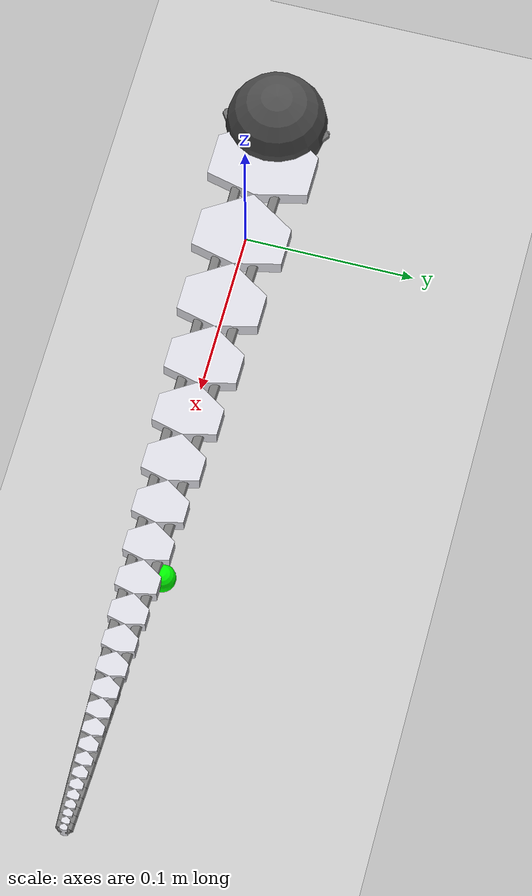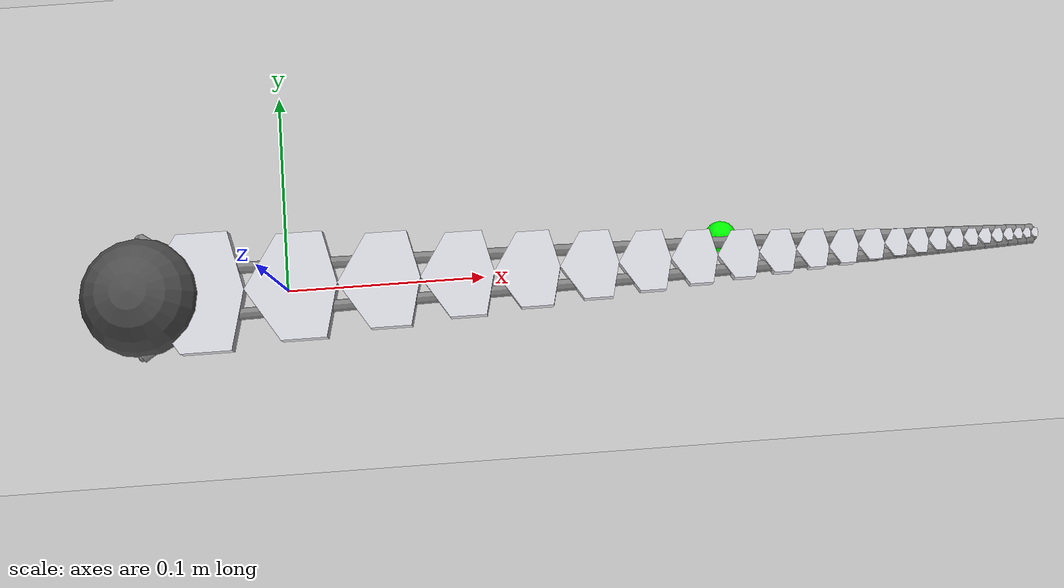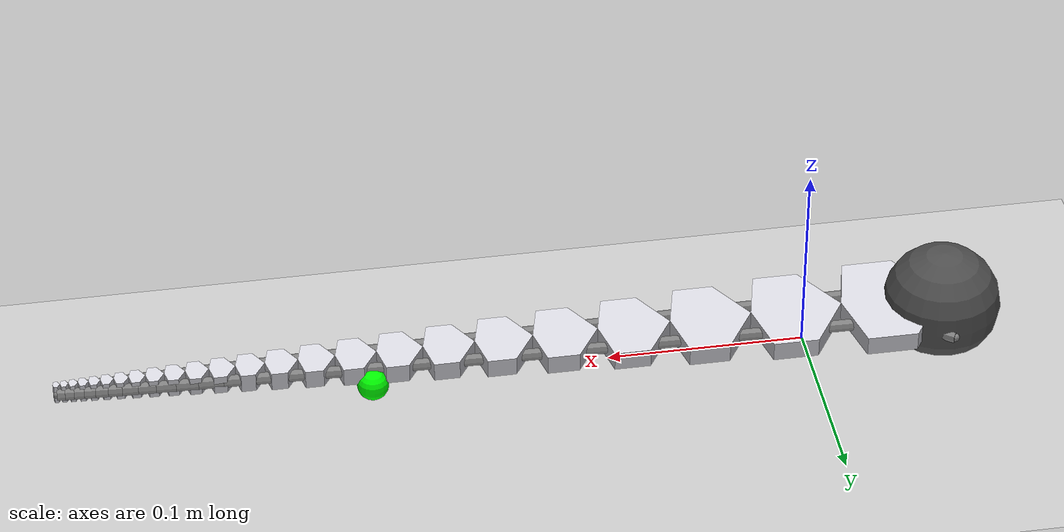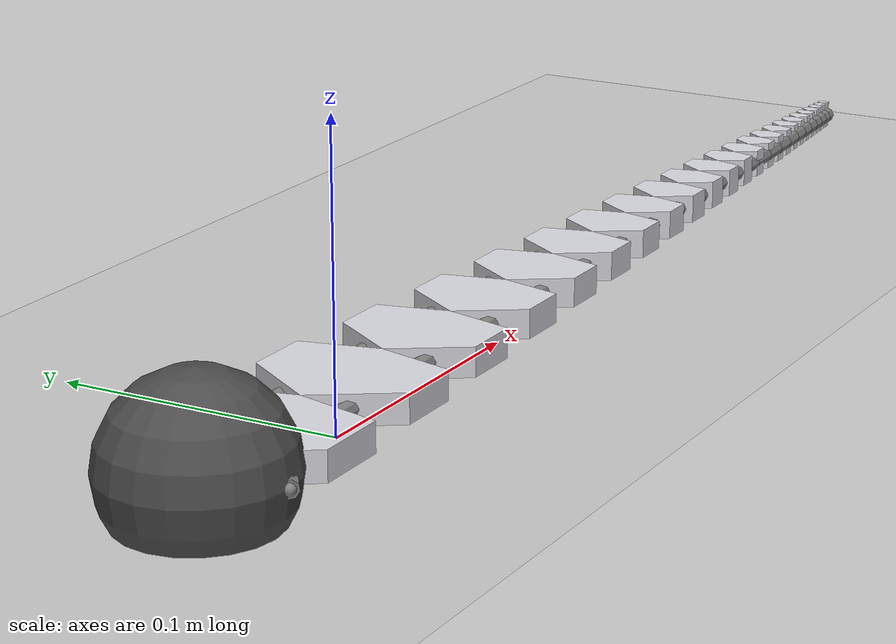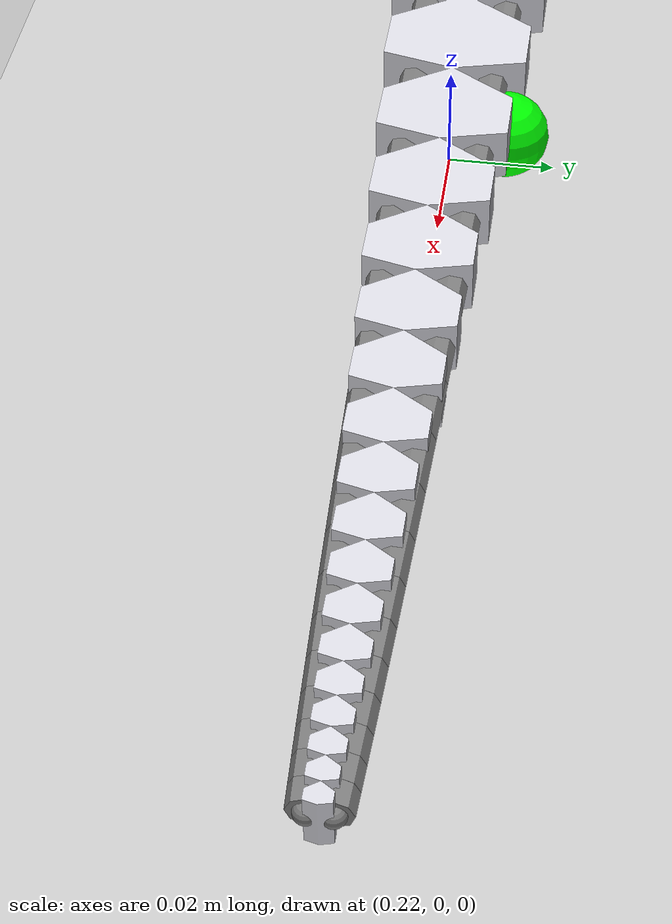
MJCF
<mujoco model="spiral_tentacle_hex_spirob_2c">
  <compiler angle="degree" coordinate="local" inertiafromgeom="true" boundmass="0.0001" boundinertia="0.0000001"/>
  <option timestep="0.002" gravity="0 0 -9.81" integrator="implicitfast" solver="Newton" iterations="60"/>
  <default>
    <joint damping="0.4000" frictionloss="0.0200" springref="0"/>
    <geom condim="4" solref="0.010 0.90" solimp="0.92 0.99 0.002" friction="1.2 0.03 0.001" margin="0"/>
  </default>
  <asset>
    <material name="mat_tpu" rgba="0.85 0.85 0.88 1"/>
    <material name="mat_floor" rgba="0.78 0.78 0.78 1"/>
    <material name="mat_obj" rgba="0 1 0 1"/>
    <mesh name="hex_base" file="assets/hex_base.obj"/>
    <mesh name="hex_0" file="assets/hex_base.obj" scale="0.052254 0.024360 0.010000"/>
    <mesh name="hex_1" file="assets/hex_base.obj" scale="0.046569 0.021710 0.010000"/>
    <mesh name="hex_2" file="assets/hex_base.obj" scale="0.041502 0.019347 0.010000"/>
    <mesh name="hex_3" file="assets/hex_base.obj" scale="0.036986 0.017242 0.010000"/>
    <mesh name="hex_4" file="assets/hex_base.obj" scale="0.032962 0.015366 0.010000"/>
    <mesh name="hex_5" file="assets/hex_base.obj" scale="0.029376 0.013694 0.010000"/>
    <mesh name="hex_6" file="assets/hex_base.obj" scale="0.026179 0.012204 0.010000"/>
    <mesh name="hex_7" file="assets/hex_base.obj" scale="0.023331 0.010876 0.010000"/>
    <mesh name="hex_8" file="assets/hex_base.obj" scale="0.020792 0.009693 0.010000"/>
    <mesh name="hex_9" file="assets/hex_base.obj" scale="0.018530 0.008638 0.010000"/>
    <mesh name="hex_10" file="assets/hex_base.obj" scale="0.016514 0.007698 0.010000"/>
    <mesh name="hex_11" file="assets/hex_base.obj" scale="0.014717 0.006861 0.010000"/>
    <mesh name="hex_12" file="assets/hex_base.obj" scale="0.013116 0.006114 0.010000"/>
    <mesh name="hex_13" file="assets/hex_base.obj" scale="0.011689 0.005449 0.010000"/>
    <mesh name="hex_14" file="assets/hex_base.obj" scale="0.010417 0.004856 0.010000"/>
    <mesh name="hex_15" file="assets/hex_base.obj" scale="0.009284 0.004328 0.010000"/>
    <mesh name="hex_16" file="assets/hex_base.obj" scale="0.008273 0.003857 0.010000"/>
    <mesh name="hex_17" file="assets/hex_base.obj" scale="0.007373 0.003437 0.010000"/>
    <mesh name="hex_18" file="assets/hex_base.obj" scale="0.006571 0.003063 0.010000"/>
    <mesh name="hex_19" file="assets/hex_base.obj" scale="0.005856 0.002730 0.010000"/>
    <mesh name="hex_20" file="assets/hex_base.obj" scale="0.005219 0.002433 0.010000"/>
    <mesh name="hex_21" file="assets/hex_base.obj" scale="0.004651 0.002168 0.010000"/>
    <mesh name="hex_22" file="assets/hex_base.obj" scale="0.004145 0.001932 0.010000"/>
    <mesh name="hex_23" file="assets/hex_base.obj" scale="0.003694 0.001722 0.010000"/>
  </asset>
  <worldbody>
    <geom name="floor" type="plane" size="2 2 0.1" material="mat_floor" friction="1.0 0.02 0.001" solref="0.012 0.95" solimp="0.95 0.99 0.002"/>
    <body name="base" pos="-0.071620 0 0.015000">
      <geom type="sphere" size="0.03" rgba="0.3 0.3 0.3 1" contype="0" conaffinity="0"/>
      <site name="tendon_left_base"  pos="0 0.030000 0" size="0.002"/>
      <site name="tendon_right_base" pos="0 -0.030000 0" size="0.002"/>
      <body name="link_0" pos="0 0 0">
        <joint name="joint_0" type="hinge" axis="0 0 1" pos="0 0 0" range="-40.0 40.0" stiffness="40.000"/>
        <geom name="link_geom_0" type="mesh" mesh="hex_0" pos="0 0 0" density="300.0" material="mat_tpu" friction="1.4 0.03 0.001" solref="0.010 0.90" solimp="0.92 0.99 0.002" condim="4" margin="0.004200"/>
        <site name="tendon_left_0"  pos="0.026127 0.012000 0" size="0.002"/>
        <site name="tendon_right_0" pos="0.026127 -0.012000 0" size="0.002"/>
        <body name="link_1" pos="0.052254 0 0">
          <joint name="joint_1" type="hinge" axis="0 0 1" pos="0 0 0" range="-46.1 46.1" stiffness="35.115"/>
          <geom name="link_geom_1" type="mesh" mesh="hex_1" pos="0 0 0" density="300.0" material="mat_tpu" friction="1.4 0.03 0.001" solref="0.010 0.90" solimp="0.92 0.99 0.002" condim="4" margin="0.003743"/>
          <site name="tendon_left_1"  pos="0.023284 0.011276 0" size="0.002"/>
          <site name="tendon_right_1" pos="0.023284 -0.011276 0" size="0.002"/>
          <body name="link_2" pos="0.046569 0 0">
            <joint name="joint_2" type="hinge" axis="0 0 1" pos="0 0 0" range="-52.2 52.2" stiffness="30.827"/>
            <geom name="link_geom_2" type="mesh" mesh="hex_2" pos="0 0 0" density="300.0" material="mat_tpu" friction="1.4 0.03 0.001" solref="0.010 0.90" solimp="0.92 0.99 0.002" condim="4" margin="0.003336"/>
            <site name="tendon_left_2"  pos="0.020751 0.010567 0" size="0.002"/>
            <site name="tendon_right_2" pos="0.020751 -0.010567 0" size="0.002"/>
            <body name="link_3" pos="0.041502 0 0">
              <joint name="joint_3" type="hinge" axis="0 0 1" pos="0 0 0" range="-58.3 58.3" stiffness="27.062"/>
              <geom name="link_geom_3" type="mesh" mesh="hex_3" pos="0 0 0" density="300.0" material="mat_tpu" friction="1.4 0.03 0.001" solref="0.010 0.90" solimp="0.92 0.99 0.002" condim="4" margin="0.002973"/>
              <site name="tendon_left_3"  pos="0.018493 0.009879 0" size="0.002"/>
              <site name="tendon_right_3" pos="0.018493 -0.009879 0" size="0.002"/>
              <body name="link_4" pos="0.036986 0 0">
                <joint name="joint_4" type="hinge" axis="0 0 1" pos="0 0 0" range="-64.3 64.3" stiffness="23.757"/>
                <geom name="link_geom_4" type="mesh" mesh="hex_4" pos="0 0 0" density="300.0" material="mat_tpu" friction="1.4 0.03 0.001" solref="0.010 0.90" solimp="0.92 0.99 0.002" condim="4" margin="0.002649"/>
                <site name="tendon_left_4"  pos="0.016481 0.009215 0" size="0.002"/>
                <site name="tendon_right_4" pos="0.016481 -0.009215 0" size="0.002"/>
                <body name="link_5" pos="0.032962 0 0">
                  <joint name="joint_5" type="hinge" axis="0 0 1" pos="0 0 0" range="-70.4 70.4" stiffness="20.856"/>
                  <geom name="link_geom_5" type="mesh" mesh="hex_5" pos="0 0 0" density="300.0" material="mat_tpu" friction="1.4 0.03 0.001" solref="0.010 0.90" solimp="0.92 0.99 0.002" condim="4" margin="0.002361"/>
                  <site name="tendon_left_5"  pos="0.014688 0.008579 0" size="0.002"/>
                  <site name="tendon_right_5" pos="0.014688 -0.008579 0" size="0.002"/>
                  <body name="link_6" pos="0.029376 0 0">
                    <joint name="joint_6" type="hinge" axis="0 0 1" pos="0 0 0" range="-76.5 76.5" stiffness="18.309"/>
                    <geom name="link_geom_6" type="mesh" mesh="hex_6" pos="0 0 0" density="300.0" material="mat_tpu" friction="1.4 0.03 0.001" solref="0.010 0.90" solimp="0.92 0.99 0.002" condim="4" margin="0.002104"/>
                    <site name="tendon_left_6"  pos="0.013090 0.007972 0" size="0.002"/>
                    <site name="tendon_right_6" pos="0.013090 -0.007972 0" size="0.002"/>
                    <body name="link_7" pos="0.026179 0 0">
                      <joint name="joint_7" type="hinge" axis="0 0 1" pos="0 0 0" range="-82.6 82.6" stiffness="16.073"/>
                      <geom name="link_geom_7" type="mesh" mesh="hex_7" pos="0 0 0" density="300.0" material="mat_tpu" friction="1.4 0.03 0.001" solref="0.010 0.90" solimp="0.92 0.99 0.002" condim="4" margin="0.001875"/>
                      <site name="tendon_left_7"  pos="0.011665 0.007396 0" size="0.002"/>
                      <site name="tendon_right_7" pos="0.011665 -0.007396 0" size="0.002"/>
                      <body name="link_8" pos="0.023331 0 0">
                        <joint name="joint_8" type="hinge" axis="0 0 1" pos="0 0 0" range="-88.7 88.7" stiffness="14.110"/>
                        <geom name="link_geom_8" type="mesh" mesh="hex_8" pos="0 0 0" density="300.0" material="mat_tpu" friction="1.4 0.03 0.001" solref="0.010 0.90" solimp="0.92 0.99 0.002" condim="4" margin="0.001671"/>
                        <site name="tendon_left_8"  pos="0.010396 0.006851 0" size="0.002"/>
                        <site name="tendon_right_8" pos="0.010396 -0.006851 0" size="0.002"/>
                        <body name="link_9" pos="0.020792 0 0">
                          <joint name="joint_9" type="hinge" axis="0 0 1" pos="0 0 0" range="-94.8 94.8" stiffness="12.387"/>
                          <geom name="link_geom_9" type="mesh" mesh="hex_9" pos="0 0 0" density="300.0" material="mat_tpu" friction="1.4 0.03 0.001" solref="0.010 0.90" solimp="0.92 0.99 0.002" condim="4" margin="0.001489"/>
                          <site name="tendon_left_9"  pos="0.009265 0.006337 0" size="0.002"/>
                          <site name="tendon_right_9" pos="0.009265 -0.006337 0" size="0.002"/>
                          <body name="link_10" pos="0.018530 0 0">
                            <joint name="joint_10" type="hinge" axis="0 0 1" pos="0 0 0" range="-100.9 100.9" stiffness="10.874"/>
                            <geom name="link_geom_10" type="mesh" mesh="hex_10" pos="0 0 0" density="300.0" material="mat_tpu" friction="1.4 0.03 0.001" solref="0.010 0.90" solimp="0.92 0.99 0.002" condim="4" margin="0.001327"/>
                            <site name="tendon_left_10"  pos="0.008257 0.005853 0" size="0.002"/>
                            <site name="tendon_right_10" pos="0.008257 -0.005853 0" size="0.002"/>
                            <body name="link_11" pos="0.016514 0 0">
                              <joint name="joint_11" type="hinge" axis="0 0 1" pos="0 0 0" range="-107.0 107.0" stiffness="9.546"/>
                              <geom name="link_geom_11" type="mesh" mesh="hex_11" pos="0 0 0" density="300.0" material="mat_tpu" friction="1.4 0.03 0.001" solref="0.010 0.90" solimp="0.92 0.99 0.002" condim="4" margin="0.001183"/>
                              <site name="tendon_left_11"  pos="0.007359 0.005400 0" size="0.002"/>
                              <site name="tendon_right_11" pos="0.007359 -0.005400 0" size="0.002"/>
                              <body name="link_12" pos="0.014717 0 0">
                                <joint name="joint_12" type="hinge" axis="0 0 1" pos="0 0 0" range="-113.0 113.0" stiffness="8.380"/>
                                <geom name="link_geom_12" type="mesh" mesh="hex_12" pos="0 0 0" density="300.0" material="mat_tpu" friction="1.4 0.03 0.001" solref="0.010 0.90" solimp="0.92 0.99 0.002" condim="4" margin="0.001054"/>
                                <site name="tendon_left_12"  pos="0.006558 0.004976 0" size="0.002"/>
                                <site name="tendon_right_12" pos="0.006558 -0.004976 0" size="0.002"/>
                                <body name="link_13" pos="0.013116 0 0">
                                  <joint name="joint_13" type="hinge" axis="0 0 1" pos="0 0 0" range="-119.1 119.1" stiffness="7.357"/>
                                  <geom name="link_geom_13" type="mesh" mesh="hex_13" pos="0 0 0" density="300.0" material="mat_tpu" friction="1.4 0.03 0.001" solref="0.010 0.90" solimp="0.92 0.99 0.002" condim="4" margin="0.000939"/>
                                  <site name="tendon_left_13"  pos="0.005844 0.004581 0" size="0.002"/>
                                  <site name="tendon_right_13" pos="0.005844 -0.004581 0" size="0.002"/>
                                  <body name="link_14" pos="0.011689 0 0">
                                    <joint name="joint_14" type="hinge" axis="0 0 1" pos="0 0 0" range="-125.2 125.2" stiffness="6.458"/>
                                    <geom name="link_geom_14" type="mesh" mesh="hex_14" pos="0 0 0" density="300.0" material="mat_tpu" friction="1.4 0.03 0.001" solref="0.010 0.90" solimp="0.92 0.99 0.002" condim="4" margin="0.000837"/>
                                    <site name="tendon_left_14"  pos="0.005208 0.004212 0" size="0.002"/>
                                    <site name="tendon_right_14" pos="0.005208 -0.004212 0" size="0.002"/>
                                    <body name="link_15" pos="0.010417 0 0">
                                      <joint name="joint_15" type="hinge" axis="0 0 1" pos="0 0 0" range="-131.3 131.3" stiffness="5.670"/>
                                      <geom name="link_geom_15" type="mesh" mesh="hex_15" pos="0 0 0" density="300.0" material="mat_tpu" friction="1.4 0.03 0.001" solref="0.010 0.90" solimp="0.92 0.99 0.002" condim="4" margin="0.000746"/>
                                      <site name="tendon_left_15"  pos="0.004642 0.003870 0" size="0.002"/>
                                      <site name="tendon_right_15" pos="0.004642 -0.003870 0" size="0.002"/>
                                      <body name="link_16" pos="0.009284 0 0">
                                        <joint name="joint_16" type="hinge" axis="0 0 1" pos="0 0 0" range="-137.4 137.4" stiffness="4.977"/>
                                        <geom name="link_geom_16" type="mesh" mesh="hex_16" pos="0 0 0" density="300.0" material="mat_tpu" friction="1.4 0.03 0.001" solref="0.010 0.90" solimp="0.92 0.99 0.002" condim="4" margin="0.000665"/>
                                        <site name="tendon_left_16"  pos="0.004137 0.003552 0" size="0.002"/>
                                        <site name="tendon_right_16" pos="0.004137 -0.003552 0" size="0.002"/>
                                        <body name="link_17" pos="0.008273 0 0">
                                          <joint name="joint_17" type="hinge" axis="0 0 1" pos="0 0 0" range="-143.5 143.5" stiffness="4.369"/>
                                          <geom name="link_geom_17" type="mesh" mesh="hex_17" pos="0 0 0" density="300.0" material="mat_tpu" friction="1.4 0.03 0.001" solref="0.010 0.90" solimp="0.92 0.99 0.002" condim="4" margin="0.000593"/>
                                          <site name="tendon_left_17"  pos="0.003687 0.003258 0" size="0.002"/>
                                          <site name="tendon_right_17" pos="0.003687 -0.003258 0" size="0.002"/>
                                          <body name="link_18" pos="0.007373 0 0">
                                            <joint name="joint_18" type="hinge" axis="0 0 1" pos="0 0 0" range="-149.6 149.6" stiffness="3.836"/>
                                            <geom name="link_geom_18" type="mesh" mesh="hex_18" pos="0 0 0" density="300.0" material="mat_tpu" friction="1.4 0.03 0.001" solref="0.010 0.90" solimp="0.92 0.99 0.002" condim="4" margin="0.000528"/>
                                            <site name="tendon_left_18"  pos="0.003286 0.002985 0" size="0.002"/>
                                            <site name="tendon_right_18" pos="0.003286 -0.002985 0" size="0.002"/>
                                            <body name="link_19" pos="0.006571 0 0">
                                              <joint name="joint_19" type="hinge" axis="0 0 1" pos="0 0 0" range="-155.7 155.7" stiffness="3.367"/>
                                              <geom name="link_geom_19" type="mesh" mesh="hex_19" pos="0 0 0" density="300.0" material="mat_tpu" friction="1.4 0.03 0.001" solref="0.010 0.90" solimp="0.92 0.99 0.002" condim="4" margin="0.000471"/>
                                              <site name="tendon_left_19"  pos="0.002928 0.002734 0" size="0.002"/>
                                              <site name="tendon_right_19" pos="0.002928 -0.002734 0" size="0.002"/>
                                              <body name="link_20" pos="0.005856 0 0">
                                                <joint name="joint_20" type="hinge" axis="0 0 1" pos="0 0 0" range="-161.7 161.7" stiffness="2.956"/>
                                                <geom name="link_geom_20" type="mesh" mesh="hex_20" pos="0 0 0" density="300.0" material="mat_tpu" friction="1.4 0.03 0.001" solref="0.010 0.90" solimp="0.92 0.99 0.002" condim="4" margin="0.000419"/>
                                                <site name="tendon_left_20"  pos="0.002609 0.002501 0" size="0.002"/>
                                                <site name="tendon_right_20" pos="0.002609 -0.002501 0" size="0.002"/>
                                                <body name="link_21" pos="0.005219 0 0">
                                                  <joint name="joint_21" type="hinge" axis="0 0 1" pos="0 0 0" range="-167.8 167.8" stiffness="2.595"/>
                                                  <geom name="link_geom_21" type="mesh" mesh="hex_21" pos="0 0 0" density="300.0" material="mat_tpu" friction="1.4 0.03 0.001" solref="0.010 0.90" solimp="0.92 0.99 0.002" condim="4" margin="0.000374"/>
                                                  <site name="tendon_left_21"  pos="0.002326 0.002287 0" size="0.002"/>
                                                  <site name="tendon_right_21" pos="0.002326 -0.002287 0" size="0.002"/>
                                                  <body name="link_22" pos="0.004651 0 0">
                                                    <joint name="joint_22" type="hinge" axis="0 0 1" pos="0 0 0" range="-173.9 173.9" stiffness="2.278"/>
                                                    <geom name="link_geom_22" type="mesh" mesh="hex_22" pos="0 0 0" density="300.0" material="mat_tpu" friction="1.4 0.03 0.001" solref="0.010 0.90" solimp="0.92 0.99 0.002" condim="4" margin="0.000333"/>
                                                    <site name="tendon_left_22"  pos="0.002072 0.002090 0" size="0.002"/>
                                                    <site name="tendon_right_22" pos="0.002072 -0.002090 0" size="0.002"/>
                                                    <body name="link_23" pos="0.004145 0 0">
                                                      <joint name="joint_23" type="hinge" axis="0 0 1" pos="0 0 0" range="-180.0 180.0" stiffness="2.000"/>
                                                      <geom name="link_geom_23" type="mesh" mesh="hex_23" pos="0 0 0" density="300.0" material="mat_tpu" friction="1.4 0.03 0.001" solref="0.010 0.90" solimp="0.92 0.99 0.002" condim="4" margin="0.000297"/>
                                                      <site name="tendon_left_23"  pos="0.001847 0.001909 0" size="0.002"/>
                                                      <site name="tendon_right_23" pos="0.001847 -0.001909 0" size="0.002"/>
                                                    </body>
                                                  </body>
                                                </body>
                                              </body>
                                            </body>
                                          </body>
                                        </body>
                                      </body>
                                    </body>
                                  </body>
                                </body>
                              </body>
                            </body>
                          </body>
                        </body>
                      </body>
                    </body>
                  </body>
                </body>
              </body>
            </body>
          </body>
        </body>
      </body>
    </body>
    <body name="obj_sphere" pos="0.220880 0.010800 0.008000">
      <joint name="obj_sphere_free" type="free"/>
      <geom name="obj_sphere_geom" type="sphere" size="0.008000" density="300" friction="1.1 0.02 0.001" solref="0.010 0.90" solimp="0.92 0.99 0.002" condim="4" material="mat_obj"/>
    </body>
  </worldbody>
  <contact>
    <exclude body1="link_0" body2="link_1"/>
    <exclude body1="link_1" body2="link_2"/>
    <exclude body1="link_2" body2="link_3"/>
    <exclude body1="link_3" body2="link_4"/>
    <exclude body1="link_4" body2="link_5"/>
    <exclude body1="link_5" body2="link_6"/>
    <exclude body1="link_6" body2="link_7"/>
    <exclude body1="link_7" body2="link_8"/>
    <exclude body1="link_8" body2="link_9"/>
    <exclude body1="link_9" body2="link_10"/>
    <exclude body1="link_10" body2="link_11"/>
    <exclude body1="link_11" body2="link_12"/>
    <exclude body1="link_12" body2="link_13"/>
    <exclude body1="link_13" body2="link_14"/>
    <exclude body1="link_14" body2="link_15"/>
    <exclude body1="link_15" body2="link_16"/>
    <exclude body1="link_16" body2="link_17"/>
    <exclude body1="link_17" body2="link_18"/>
    <exclude body1="link_18" body2="link_19"/>
    <exclude body1="link_19" body2="link_20"/>
    <exclude body1="link_20" body2="link_21"/>
    <exclude body1="link_21" body2="link_22"/>
    <exclude body1="link_22" body2="link_23"/>
  </contact>
  <tendon>
    <spatial name="tendon_left" limited="false" width="0.002">
      <site site="tendon_left_base"/>
      <site site="tendon_left_0"/>
      <site site="tendon_left_1"/>
      <site site="tendon_left_2"/>
      <site site="tendon_left_3"/>
      <site site="tendon_left_4"/>
      <site site="tendon_left_5"/>
      <site site="tendon_left_6"/>
      <site site="tendon_left_7"/>
      <site site="tendon_left_8"/>
      <site site="tendon_left_9"/>
      <site site="tendon_left_10"/>
      <site site="tendon_left_11"/>
      <site site="tendon_left_12"/>
      <site site="tendon_left_13"/>
      <site site="tendon_left_14"/>
      <site site="tendon_left_15"/>
      <site site="tendon_left_16"/>
      <site site="tendon_left_17"/>
      <site site="tendon_left_18"/>
      <site site="tendon_left_19"/>
      <site site="tendon_left_20"/>
      <site site="tendon_left_21"/>
      <site site="tendon_left_22"/>
      <site site="tendon_left_23"/>
    </spatial>
    <spatial name="tendon_right" limited="false" width="0.002">
      <site site="tendon_right_base"/>
      <site site="tendon_right_0"/>
      <site site="tendon_right_1"/>
      <site site="tendon_right_2"/>
      <site site="tendon_right_3"/>
      <site site="tendon_right_4"/>
      <site site="tendon_right_5"/>
      <site site="tendon_right_6"/>
      <site site="tendon_right_7"/>
      <site site="tendon_right_8"/>
      <site site="tendon_right_9"/>
      <site site="tendon_right_10"/>
      <site site="tendon_right_11"/>
      <site site="tendon_right_12"/>
      <site site="tendon_right_13"/>
      <site site="tendon_right_14"/>
      <site site="tendon_right_15"/>
      <site site="tendon_right_16"/>
      <site site="tendon_right_17"/>
      <site site="tendon_right_18"/>
      <site site="tendon_right_19"/>
      <site site="tendon_right_20"/>
      <site site="tendon_right_21"/>
      <site site="tendon_right_22"/>
      <site site="tendon_right_23"/>
    </spatial>
    <spatial name="tendon_left_seg_0" limited="false" stiffness="0.000000" damping="0.000000" frictionloss="0.150000"><site site="tendon_left_base"/><site site="tendon_left_0"/></spatial>
    <spatial name="tendon_right_seg_0" limited="false" stiffness="0.000000" damping="0.000000" frictionloss="0.150000"><site site="tendon_right_base"/><site site="tendon_right_0"/></spatial>
    <spatial name="tendon_left_seg_1" limited="false" stiffness="0.000000" damping="0.000000" frictionloss="0.150000"><site site="tendon_left_0"/><site site="tendon_left_1"/></spatial>
    <spatial name="tendon_right_seg_1" limited="false" stiffness="0.000000" damping="0.000000" frictionloss="0.150000"><site site="tendon_right_0"/><site site="tendon_right_1"/></spatial>
    <spatial name="tendon_left_seg_2" limited="false" stiffness="0.000000" damping="0.000000" frictionloss="0.150000"><site site="tendon_left_1"/><site site="tendon_left_2"/></spatial>
    <spatial name="tendon_right_seg_2" limited="false" stiffness="0.000000" damping="0.000000" frictionloss="0.150000"><site site="tendon_right_1"/><site site="tendon_right_2"/></spatial>
    <spatial name="tendon_left_seg_3" limited="false" stiffness="0.000000" damping="0.000000" frictionloss="0.150000"><site site="tendon_left_2"/><site site="tendon_left_3"/></spatial>
    <spatial name="tendon_right_seg_3" limited="false" stiffness="0.000000" damping="0.000000" frictionloss="0.150000"><site site="tendon_right_2"/><site site="tendon_right_3"/></spatial>
    <spatial name="tendon_left_seg_4" limited="false" stiffness="0.000000" damping="0.000000" frictionloss="0.150000"><site site="tendon_left_3"/><site site="tendon_left_4"/></spatial>
    <spatial name="tendon_right_seg_4" limited="false" stiffness="0.000000" damping="0.000000" frictionloss="0.150000"><site site="tendon_right_3"/><site site="tendon_right_4"/></spatial>
    <spatial name="tendon_left_seg_5" limited="false" stiffness="0.000000" damping="0.000000" frictionloss="0.150000"><site site="tendon_left_4"/><site site="tendon_left_5"/></spatial>
    <spatial name="tendon_right_seg_5" limited="false" stiffness="0.000000" damping="0.000000" frictionloss="0.150000"><site site="tendon_right_4"/><site site="tendon_right_5"/></spatial>
    <spatial name="tendon_left_seg_6" limited="false" stiffness="0.000000" damping="0.000000" frictionloss="0.150000"><site site="tendon_left_5"/><site site="tendon_left_6"/></spatial>
    <spatial name="tendon_right_seg_6" limited="false" stiffness="0.000000" damping="0.000000" frictionloss="0.150000"><site site="tendon_right_5"/><site site="tendon_right_6"/></spatial>
    <spatial name="tendon_left_seg_7" limited="false" stiffness="0.000000" damping="0.000000" frictionloss="0.150000"><site site="tendon_left_6"/><site site="tendon_left_7"/></spatial>
    <spatial name="tendon_right_seg_7" limited="false" stiffness="0.000000" damping="0.000000" frictionloss="0.150000"><site site="tendon_right_6"/><site site="tendon_right_7"/></spatial>
    <spatial name="tendon_left_seg_8" limited="false" stiffness="0.000000" damping="0.000000" frictionloss="0.150000"><site site="tendon_left_7"/><site site="tendon_left_8"/></spatial>
    <spatial name="tendon_right_seg_8" limited="false" stiffness="0.000000" damping="0.000000" frictionloss="0.150000"><site site="tendon_right_7"/><site site="tendon_right_8"/></spatial>
    <spatial name="tendon_left_seg_9" limited="false" stiffness="0.000000" damping="0.000000" frictionloss="0.150000"><site site="tendon_left_8"/><site site="tendon_left_9"/></spatial>
    <spatial name="tendon_right_seg_9" limited="false" stiffness="0.000000" damping="0.000000" frictionloss="0.150000"><site site="tendon_right_8"/><site site="tendon_right_9"/></spatial>
    <spatial name="tendon_left_seg_10" limited="false" stiffness="0.000000" damping="0.000000" frictionloss="0.150000"><site site="tendon_left_9"/><site site="tendon_left_10"/></spatial>
    <spatial name="tendon_right_seg_10" limited="false" stiffness="0.000000" damping="0.000000" frictionloss="0.150000"><site site="tendon_right_9"/><site site="tendon_right_10"/></spatial>
    <spatial name="tendon_left_seg_11" limited="false" stiffness="0.000000" damping="0.000000" frictionloss="0.150000"><site site="tendon_left_10"/><site site="tendon_left_11"/></spatial>
    <spatial name="tendon_right_seg_11" limited="false" stiffness="0.000000" damping="0.000000" frictionloss="0.150000"><site site="tendon_right_10"/><site site="tendon_right_11"/></spatial>
    <spatial name="tendon_left_seg_12" limited="false" stiffness="0.000000" damping="0.000000" frictionloss="0.150000"><site site="tendon_left_11"/><site site="tendon_left_12"/></spatial>
    <spatial name="tendon_right_seg_12" limited="false" stiffness="0.000000" damping="0.000000" frictionloss="0.150000"><site site="tendon_right_11"/><site site="tendon_right_12"/></spatial>
    <spatial name="tendon_left_seg_13" limited="false" stiffness="0.000000" damping="0.000000" frictionloss="0.150000"><site site="tendon_left_12"/><site site="tendon_left_13"/></spatial>
    <spatial name="tendon_right_seg_13" limited="false" stiffness="0.000000" damping="0.000000" frictionloss="0.150000"><site site="tendon_right_12"/><site site="tendon_right_13"/></spatial>
    <spatial name="tendon_left_seg_14" limited="false" stiffness="0.000000" damping="0.000000" frictionloss="0.150000"><site site="tendon_left_13"/><site site="tendon_left_14"/></spatial>
    <spatial name="tendon_right_seg_14" limited="false" stiffness="0.000000" damping="0.000000" frictionloss="0.150000"><site site="tendon_right_13"/><site site="tendon_right_14"/></spatial>
    <spatial name="tendon_left_seg_15" limited="false" stiffness="0.000000" damping="0.000000" frictionloss="0.150000"><site site="tendon_left_14"/><site site="tendon_left_15"/></spatial>
    <spatial name="tendon_right_seg_15" limited="false" stiffness="0.000000" damping="0.000000" frictionloss="0.150000"><site site="tendon_right_14"/><site site="tendon_right_15"/></spatial>
    <spatial name="tendon_left_seg_16" limited="false" stiffness="0.000000" damping="0.000000" frictionloss="0.150000"><site site="tendon_left_15"/><site site="tendon_left_16"/></spatial>
    <spatial name="tendon_right_seg_16" limited="false" stiffness="0.000000" damping="0.000000" frictionloss="0.150000"><site site="tendon_right_15"/><site site="tendon_right_16"/></spatial>
    <spatial name="tendon_left_seg_17" limited="false" stiffness="0.000000" damping="0.000000" frictionloss="0.150000"><site site="tendon_left_16"/><site site="tendon_left_17"/></spatial>
    <spatial name="tendon_right_seg_17" limited="false" stiffness="0.000000" damping="0.000000" frictionloss="0.150000"><site site="tendon_right_16"/><site site="tendon_right_17"/></spatial>
    <spatial name="tendon_left_seg_18" limited="false" stiffness="0.000000" damping="0.000000" frictionloss="0.150000"><site site="tendon_left_17"/><site site="tendon_left_18"/></spatial>
    <spatial name="tendon_right_seg_18" limited="false" stiffness="0.000000" damping="0.000000" frictionloss="0.150000"><site site="tendon_right_17"/><site site="tendon_right_18"/></spatial>
    <spatial name="tendon_left_seg_19" limited="false" stiffness="0.000000" damping="0.000000" frictionloss="0.150000"><site site="tendon_left_18"/><site site="tendon_left_19"/></spatial>
    <spatial name="tendon_right_seg_19" limited="false" stiffness="0.000000" damping="0.000000" frictionloss="0.150000"><site site="tendon_right_18"/><site site="tendon_right_19"/></spatial>
    <spatial name="tendon_left_seg_20" limited="false" stiffness="0.000000" damping="0.000000" frictionloss="0.150000"><site site="tendon_left_19"/><site site="tendon_left_20"/></spatial>
    <spatial name="tendon_right_seg_20" limited="false" stiffness="0.000000" damping="0.000000" frictionloss="0.150000"><site site="tendon_right_19"/><site site="tendon_right_20"/></spatial>
    <spatial name="tendon_left_seg_21" limited="false" stiffness="0.000000" damping="0.000000" frictionloss="0.150000"><site site="tendon_left_20"/><site site="tendon_left_21"/></spatial>
    <spatial name="tendon_right_seg_21" limited="false" stiffness="0.000000" damping="0.000000" frictionloss="0.150000"><site site="tendon_right_20"/><site site="tendon_right_21"/></spatial>
    <spatial name="tendon_left_seg_22" limited="false" stiffness="0.000000" damping="0.000000" frictionloss="0.150000"><site site="tendon_left_21"/><site site="tendon_left_22"/></spatial>
    <spatial name="tendon_right_seg_22" limited="false" stiffness="0.000000" damping="0.000000" frictionloss="0.150000"><site site="tendon_right_21"/><site site="tendon_right_22"/></spatial>
    <spatial name="tendon_left_seg_23" limited="false" stiffness="0.000000" damping="0.000000" frictionloss="0.150000"><site site="tendon_left_22"/><site site="tendon_left_23"/></spatial>
    <spatial name="tendon_right_seg_23" limited="false" stiffness="0.000000" damping="0.000000" frictionloss="0.150000"><site site="tendon_right_22"/><site site="tendon_right_23"/></spatial>
  </tendon>
  <actuator>
    <motor name="motor_left" tendon="tendon_left" gear="1000.000" ctrllimited="true" ctrlrange="-1 1" forcerange="-80.000000 80.000000"/>
    <motor name="motor_right" tendon="tendon_right" gear="1000.000" ctrllimited="true" ctrlrange="-1 1" forcerange="-80.000000 80.000000"/>
    <motor name="motor_left_seg_0" tendon="tendon_left_seg_0" gear="1000.000" ctrllimited="true" ctrlrange="-1 1" forcerange="-80.000000 80.000000"/>
    <motor name="motor_right_seg_0" tendon="tendon_right_seg_0" gear="1000.000" ctrllimited="true" ctrlrange="-1 1" forcerange="-80.000000 80.000000"/>
    <motor name="motor_left_seg_1" tendon="tendon_left_seg_1" gear="1000.000" ctrllimited="true" ctrlrange="-1 1" forcerange="-80.000000 80.000000"/>
    <motor name="motor_right_seg_1" tendon="tendon_right_seg_1" gear="1000.000" ctrllimited="true" ctrlrange="-1 1" forcerange="-80.000000 80.000000"/>
    <motor name="motor_left_seg_2" tendon="tendon_left_seg_2" gear="1000.000" ctrllimited="true" ctrlrange="-1 1" forcerange="-80.000000 80.000000"/>
    <motor name="motor_right_seg_2" tendon="tendon_right_seg_2" gear="1000.000" ctrllimited="true" ctrlrange="-1 1" forcerange="-80.000000 80.000000"/>
    <motor name="motor_left_seg_3" tendon="tendon_left_seg_3" gear="1000.000" ctrllimited="true" ctrlrange="-1 1" forcerange="-80.000000 80.000000"/>
    <motor name="motor_right_seg_3" tendon="tendon_right_seg_3" gear="1000.000" ctrllimited="true" ctrlrange="-1 1" forcerange="-80.000000 80.000000"/>
    <motor name="motor_left_seg_4" tendon="tendon_left_seg_4" gear="1000.000" ctrllimited="true" ctrlrange="-1 1" forcerange="-80.000000 80.000000"/>
    <motor name="motor_right_seg_4" tendon="tendon_right_seg_4" gear="1000.000" ctrllimited="true" ctrlrange="-1 1" forcerange="-80.000000 80.000000"/>
    <motor name="motor_left_seg_5" tendon="tendon_left_seg_5" gear="1000.000" ctrllimited="true" ctrlrange="-1 1" forcerange="-80.000000 80.000000"/>
    <motor name="motor_right_seg_5" tendon="tendon_right_seg_5" gear="1000.000" ctrllimited="true" ctrlrange="-1 1" forcerange="-80.000000 80.000000"/>
    <motor name="motor_left_seg_6" tendon="tendon_left_seg_6" gear="1000.000" ctrllimited="true" ctrlrange="-1 1" forcerange="-80.000000 80.000000"/>
    <motor name="motor_right_seg_6" tendon="tendon_right_seg_6" gear="1000.000" ctrllimited="true" ctrlrange="-1 1" forcerange="-80.000000 80.000000"/>
    <motor name="motor_left_seg_7" tendon="tendon_left_seg_7" gear="1000.000" ctrllimited="true" ctrlrange="-1 1" forcerange="-80.000000 80.000000"/>
    <motor name="motor_right_seg_7" tendon="tendon_right_seg_7" gear="1000.000" ctrllimited="true" ctrlrange="-1 1" forcerange="-80.000000 80.000000"/>
    <motor name="motor_left_seg_8" tendon="tendon_left_seg_8" gear="1000.000" ctrllimited="true" ctrlrange="-1 1" forcerange="-80.000000 80.000000"/>
    <motor name="motor_right_seg_8" tendon="tendon_right_seg_8" gear="1000.000" ctrllimited="true" ctrlrange="-1 1" forcerange="-80.000000 80.000000"/>
    <motor name="motor_left_seg_9" tendon="tendon_left_seg_9" gear="1000.000" ctrllimited="true" ctrlrange="-1 1" forcerange="-80.000000 80.000000"/>
    <motor name="motor_right_seg_9" tendon="tendon_right_seg_9" gear="1000.000" ctrllimited="true" ctrlrange="-1 1" forcerange="-80.000000 80.000000"/>
    <motor name="motor_left_seg_10" tendon="tendon_left_seg_10" gear="1000.000" ctrllimited="true" ctrlrange="-1 1" forcerange="-80.000000 80.000000"/>
    <motor name="motor_right_seg_10" tendon="tendon_right_seg_10" gear="1000.000" ctrllimited="true" ctrlrange="-1 1" forcerange="-80.000000 80.000000"/>
    <motor name="motor_left_seg_11" tendon="tendon_left_seg_11" gear="1000.000" ctrllimited="true" ctrlrange="-1 1" forcerange="-80.000000 80.000000"/>
    <motor name="motor_right_seg_11" tendon="tendon_right_seg_11" gear="1000.000" ctrllimited="true" ctrlrange="-1 1" forcerange="-80.000000 80.000000"/>
    <motor name="motor_left_seg_12" tendon="tendon_left_seg_12" gear="1000.000" ctrllimited="true" ctrlrange="-1 1" forcerange="-80.000000 80.000000"/>
    <motor name="motor_right_seg_12" tendon="tendon_right_seg_12" gear="1000.000" ctrllimited="true" ctrlrange="-1 1" forcerange="-80.000000 80.000000"/>
    <motor name="motor_left_seg_13" tendon="tendon_left_seg_13" gear="1000.000" ctrllimited="true" ctrlrange="-1 1" forcerange="-80.000000 80.000000"/>
    <motor name="motor_right_seg_13" tendon="tendon_right_seg_13" gear="1000.000" ctrllimited="true" ctrlrange="-1 1" forcerange="-80.000000 80.000000"/>
    <motor name="motor_left_seg_14" tendon="tendon_left_seg_14" gear="1000.000" ctrllimited="true" ctrlrange="-1 1" forcerange="-80.000000 80.000000"/>
    <motor name="motor_right_seg_14" tendon="tendon_right_seg_14" gear="1000.000" ctrllimited="true" ctrlrange="-1 1" forcerange="-80.000000 80.000000"/>
    <motor name="motor_left_seg_15" tendon="tendon_left_seg_15" gear="1000.000" ctrllimited="true" ctrlrange="-1 1" forcerange="-80.000000 80.000000"/>
    <motor name="motor_right_seg_15" tendon="tendon_right_seg_15" gear="1000.000" ctrllimited="true" ctrlrange="-1 1" forcerange="-80.000000 80.000000"/>
    <motor name="motor_left_seg_16" tendon="tendon_left_seg_16" gear="1000.000" ctrllimited="true" ctrlrange="-1 1" forcerange="-80.000000 80.000000"/>
    <motor name="motor_right_seg_16" tendon="tendon_right_seg_16" gear="1000.000" ctrllimited="true" ctrlrange="-1 1" forcerange="-80.000000 80.000000"/>
    <motor name="motor_left_seg_17" tendon="tendon_left_seg_17" gear="1000.000" ctrllimited="true" ctrlrange="-1 1" forcerange="-80.000000 80.000000"/>
    <motor name="motor_right_seg_17" tendon="tendon_right_seg_17" gear="1000.000" ctrllimited="true" ctrlrange="-1 1" forcerange="-80.000000 80.000000"/>
    <motor name="motor_left_seg_18" tendon="tendon_left_seg_18" gear="1000.000" ctrllimited="true" ctrlrange="-1 1" forcerange="-80.000000 80.000000"/>
    <motor name="motor_right_seg_18" tendon="tendon_right_seg_18" gear="1000.000" ctrllimited="true" ctrlrange="-1 1" forcerange="-80.000000 80.000000"/>
    <motor name="motor_left_seg_19" tendon="tendon_left_seg_19" gear="1000.000" ctrllimited="true" ctrlrange="-1 1" forcerange="-80.000000 80.000000"/>
    <motor name="motor_right_seg_19" tendon="tendon_right_seg_19" gear="1000.000" ctrllimited="true" ctrlrange="-1 1" forcerange="-80.000000 80.000000"/>
    <motor name="motor_left_seg_20" tendon="tendon_left_seg_20" gear="1000.000" ctrllimited="true" ctrlrange="-1 1" forcerange="-80.000000 80.000000"/>
    <motor name="motor_right_seg_20" tendon="tendon_right_seg_20" gear="1000.000" ctrllimited="true" ctrlrange="-1 1" forcerange="-80.000000 80.000000"/>
    <motor name="motor_left_seg_21" tendon="tendon_left_seg_21" gear="1000.000" ctrllimited="true" ctrlrange="-1 1" forcerange="-80.000000 80.000000"/>
    <motor name="motor_right_seg_21" tendon="tendon_right_seg_21" gear="1000.000" ctrllimited="true" ctrlrange="-1 1" forcerange="-80.000000 80.000000"/>
    <motor name="motor_left_seg_22" tendon="tendon_left_seg_22" gear="1000.000" ctrllimited="true" ctrlrange="-1 1" forcerange="-80.000000 80.000000"/>
    <motor name="motor_right_seg_22" tendon="tendon_right_seg_22" gear="1000.000" ctrllimited="true" ctrlrange="-1 1" forcerange="-80.000000 80.000000"/>
    <motor name="motor_left_seg_23" tendon="tendon_left_seg_23" gear="1000.000" ctrllimited="true" ctrlrange="-1 1" forcerange="-80.000000 80.000000"/>
    <motor name="motor_right_seg_23" tendon="tendon_right_seg_23" gear="1000.000" ctrllimited="true" ctrlrange="-1 1" forcerange="-80.000000 80.000000"/>
  </actuator>
</mujoco>
